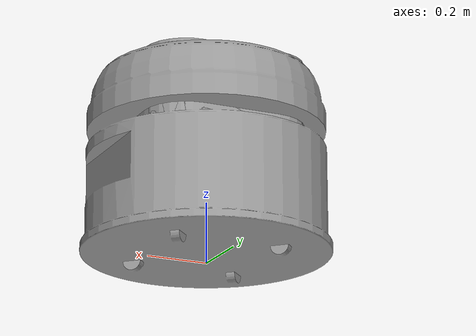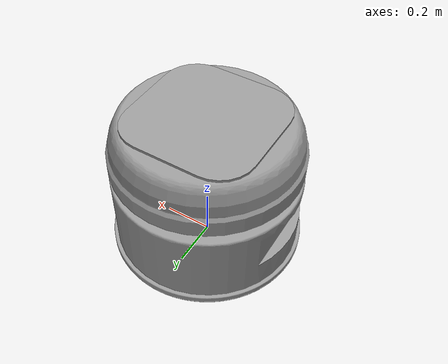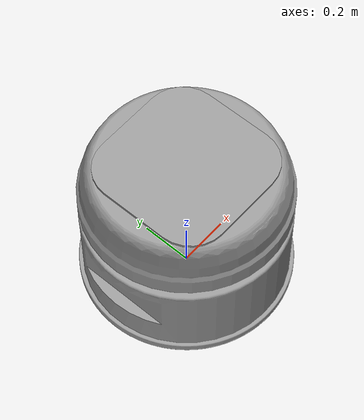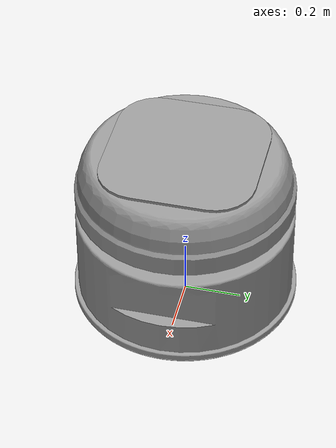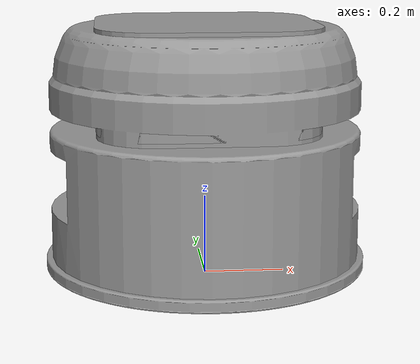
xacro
<?xml version="1.0"?>
<robot name="robot" xmlns:xacro="http://www.ros.org/wiki/xacro">

    <!-- Included URDF/XACRO Files -->

    <!-- PROPERTY LIST -->
    <!--All units in m-kg-s-radians unit system -->
    <xacro:property name="M_PI" value="3.1415926535897931" />

    <!-- Main Body-base -->
    <xacro:property name="base_r_size" value="0.77" />
    <xacro:property name="base_h_size" value="0.64" />
    <xacro:property name="base_body_mass" value="300" /> <!-- in kg -->

    <!--Inertial macros for the box and cylinder. Units are kg*m^2-->
  <xacro:macro name="cylinder_inertia" params="m r h">
    <inertia  ixx="${m*(3*r*r+h*h)/12}" ixy = "0" ixz = "0"
              iyy="${m*(3*r*r+h*h)/12}" iyz = "0"
              izz="${m*r*r/2}" />
  </xacro:macro>

    <!-- BASE-FOOTPRINT -->
    <!-- base_footprint is a fictitious link(frame) that is on the ground right below base_body origin -->
    <link name="base_footprint">
    </link>
    <gazebo reference="base_footprint">
        <turnGravityOff>false</turnGravityOff>
    </gazebo>
    <!-- BASE-LINK -->
    <joint name="base_footprint_joint" type="fixed">
        <origin xyz="0 0 0" rpy="0 0 0" />
        <parent link="base_footprint"/>
        <child link="base_body" />
    </joint>
    <link name="base_body">
        <visual>
            <origin rpy="${M_PI/2} 0 0" xyz="0 0 0.03"/>
            <geometry>
                <mesh filename="package://robot_description/meshes/row_robot.stl"/>
            </geometry>
            <material name="Gray"/>
        </visual>
        <collision>
            <origin rpy="0 0 0" xyz="0 0 ${base_h_size/2}"/>
            <geometry>
              <cylinder length="${base_h_size}" radius="${base_r_size/2}" />
            </geometry>
        </collision>
        <inertial>
            <mass value="${base_body_mass}"/>
            <origin xyz="0.0 0.0 ${0}" rpy="0 0 0" />
            <!--The 3x3 rotational inertia matrix. -->
            <cylinder_inertia  m="${base_body_mass}" r="${base_r_size/2}" h="${base_h_size}"/>
        </inertial>
    </link>
    <gazebo reference="base_body">
        <material>Gazebo/Gray</material>
        <turnGravityOff>false</turnGravityOff>
    </gazebo>

    <!-- BOAD -->
    <joint name="boad_joint" type="prismatic">
        <origin xyz="0.0 0.0 0.39" rpy="0.0 0.0 0.0"/>
        <parent link="base_body"/>
        <child link="boad"/>
        <axis xyz="0.0 0.0 1.0"/>
        <limit effort="1000.0" lower="0.0" upper="0.10" velocity="0.5"/>
    </joint>
    <link name="boad">
        <visual>
            <origin rpy="${M_PI/2} 0.0 0.0" xyz="0.0 0.0 0.0"/>
            <geometry>
                <mesh filename="package://robot_description/meshes/boad.stl"/>
            </geometry>>
            <material name="Gray"/>
        </visual>
        <collision>
            <origin rpy="${M_PI/2} 0.0 0.0" xyz="0.0 0.0 0.0"/>
            <geometry>
                <mesh filename="package://robot_description/meshes/boad.stl"/>
            </geometry>
        </collision>
        <inertial>
            <mass value="50" />
            <origin xyz="0.0 0.0 0" rpy="${M_PI/2} 0 0"/>
            <cylinder_inertia  m="50" r="0.4" h="0.25"/>
        </inertial>
    </link>
    <transmission name="board_joint_trans">
        <type>transmission_interface/SimpleTransmission</type>
        <joint name="boad_joint">
            <hardwareInterface>PositionJointInterface</hardwareInterface>
        </joint>
        <actuator name="boad_joint_motor">
            <hardwareInterface>PositionJointInterface</hardwareInterface>
            <mechanicalReduction>1</mechanicalReduction>
        </actuator>
    </transmission>
    <gazebo reference="boad">
        <material>Gazebo/Gray</material>
        <turnGravityOff>false</turnGravityOff>
    </gazebo>

    <!-- SENSOR -->
    <joint name="hokuyo_joint" type="fixed">
        <origin xyz="0.339 0 0.36" rpy="0 0 0"/>
        <parent link="base_body"/>
        <child link="base_scan"/>
    </joint>
    <link name="base_scan">
        <collision>
            <origin xyz="0 0 -0.01" rpy="0 0 0"/>
            <geometry>
                <box size="0.01 0.01 0.01"/>
            </geometry>
        </collision>
        <visual>
            <origin xyz="0 0 -0.01" rpy="0 0 0"/>
            <geometry>
                <box size="0.01 0.01 0.01"/>
            </geometry>
            <material name="White"/>
        </visual>
        <inertial>
            <mass value="1e-5" />
            <origin xyz="0 0 -0.01" rpy="0 0 0"/>
            <inertia ixx="1e-6" ixy="0" ixz="0" iyy="1e-6" iyz="0" izz="1e-6" />
        </inertial>
    </link>
    <gazebo reference="base_scan">
        <sensor type="ray" name="head_hokuyo_sensor">
            <pose>0 0 0 0 0 0</pose>
            <visualize>true</visualize>
            <update_rate>40</update_rate>
            <ray>
                <scan>
                <horizontal>
                    <samples>720</samples>
                    <resolution>1</resolution>
                    <min_angle>-0.78539816339</min_angle>
                    <max_angle>0.78539816339</max_angle>
                </horizontal>
                </scan>
                <range>
                <min>0.50</min>
                <max>30.0</max>
                <resolution>0.01</resolution>
                </range>
                <noise>
                    <type>gaussian</type>
                    <mean>0.0</mean>
                    <stddev>0.01</stddev>
                </noise>
            </ray>
            <plugin name="gazebo_ros_head_hokuyo_controller" filename="libgazebo_ros_laser.so">
                <alwaysOn>true</alwaysOn>
                <topicName>/laser_scan</topicName>
                <frameName>/base_scan</frameName>
            </plugin>
        </sensor>
    </gazebo>

    <gazebo>
        <plugin name="object_controller" filename="libgazebo_ros_planar_move.so">
            <commandTopic>cmd_vel</commandTopic>
            <odometryTopic>odom</odometryTopic>
            <odometryFrame>odom</odometryFrame>
            <odometryRate>20.0</odometryRate>
            <robotBaseFrame>base_footprint</robotBaseFrame>
        </plugin>
        <plugin name="gazebo_ros_control" filename="libgazebo_ros_control.so"/>
    </gazebo>

</robot>
